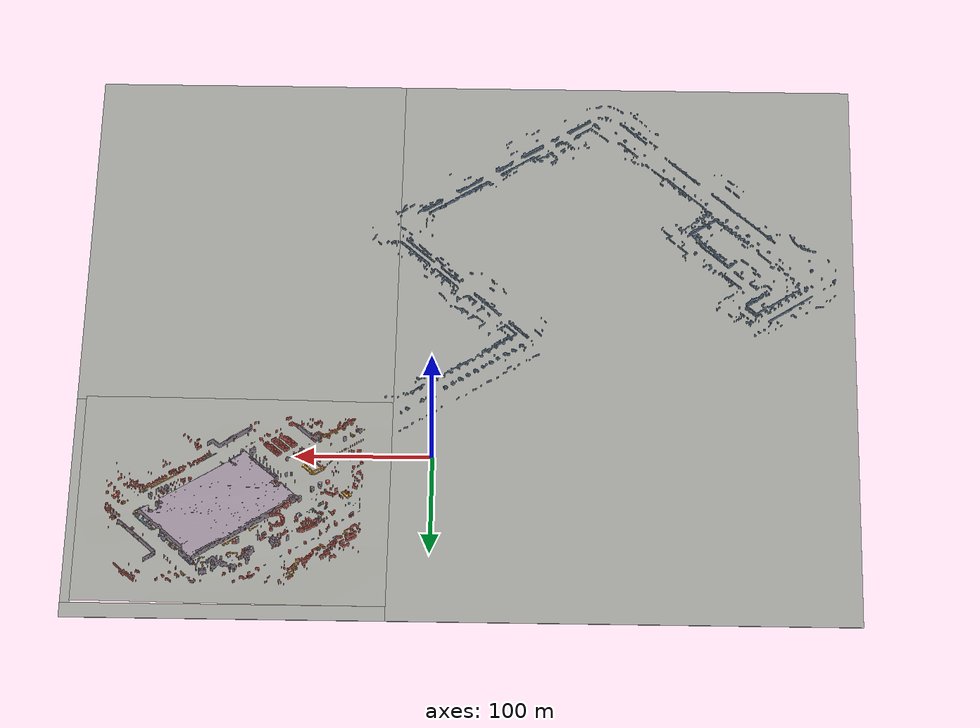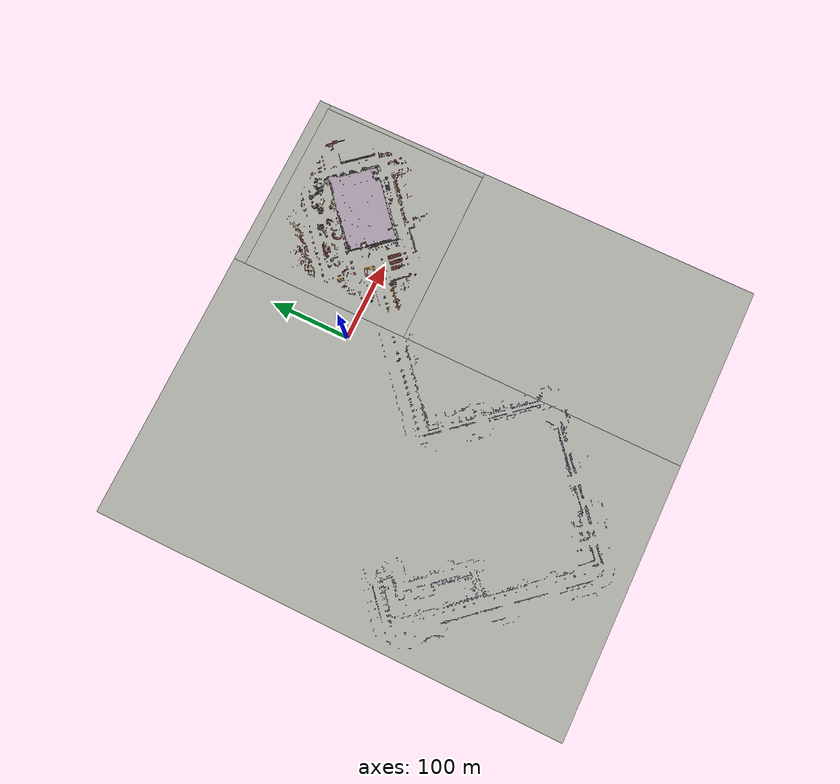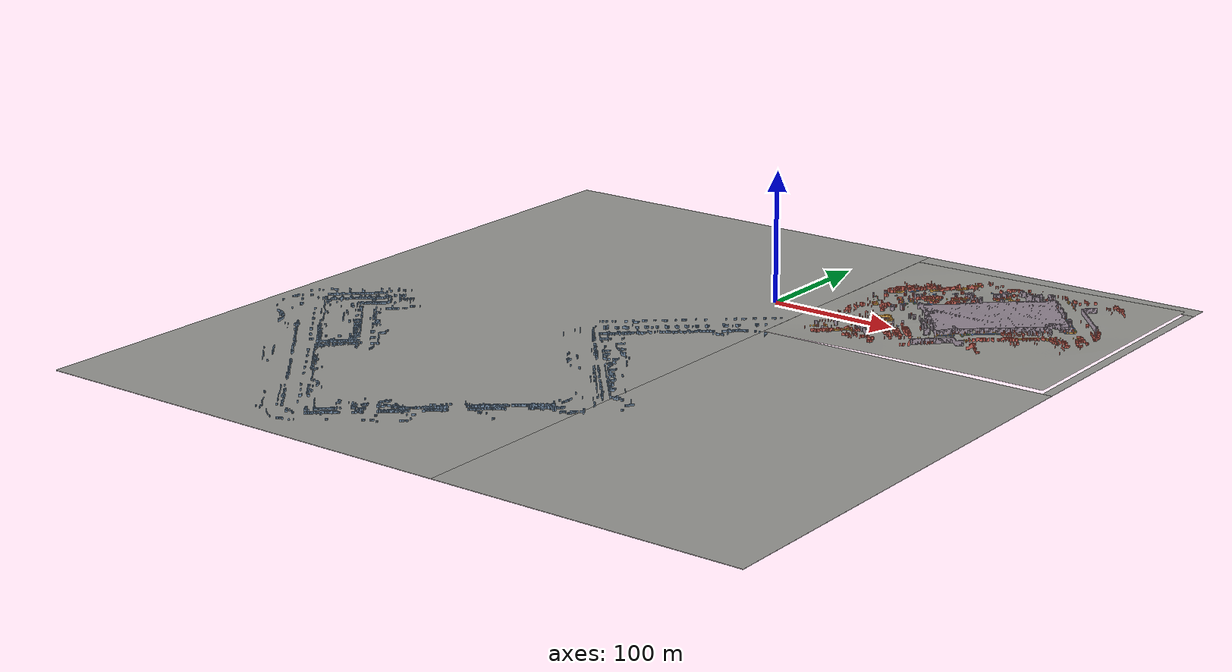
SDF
<sdf version="1.9">
 <world name="tsukuba">
  <physics name="4ms" type="ignored">
   <max_step_size>0.004</max_step_size>
   <real_time_factor>1.0</real_time_factor>
   <gravity>0 0 -9.8</gravity>
  </physics>
  <plugin filename="libignition-gazebo-physics-system.so" name="ignition::gazebo::systems::Physics"/>
  <plugin filename="libignition-gazebo-user-commands-system.so" name="ignition::gazebo::systems::UserCommands"/>
  <plugin filename="libignition-gazebo-scene-broadcaster-system.so" name="ignition::gazebo::systems::SceneBroadcaster"/>
  <plugin filename="libignition-gazebo-sensors-system.so" name="ignition::gazebo::systems::Sensors">
   <render_engine>ogre2</render_engine>
  </plugin>
  <plugin filename="libignition-gazebo-imu-system.so" name="ignition::gazebo::systems::Imu"/>
  <plugin filename="ignition-gazebo-navsat-system" name="ignition::gazebo::systems::NavSat"/>
  <scene>
   <ambient>1 1 1 1</ambient>
   <background>0.3 0.7 0.9 1</background>
   <shadows>0</shadows>
   <grid>false</grid>
  </scene>
  <light type="directional" name="sun">
   <cast_shadows>0</cast_shadows>
   <pose>0 0 10 0 0 0</pose>
   <diffuse>0.8 0.8 0.8 1</diffuse>
   <specular>0.2 0.2 0.2 1</specular>
   <attenuation>
    <range>1000</range>
    <constant>0.9</constant>
    <linear>0.01</linear>
    <quadratic>0.001</quadratic>
   </attenuation>
   <direction>-0.5 0.1 -0.9</direction>
  </light>
  <include><uri>model://tsukuba</uri></include>
  <include><uri>model://tsukuba_walls</uri></include>
  <gravity>0 0 -9.8000000000000007</gravity>
  <magnetic_field>6.0000000000000002e-06 2.3e-05 -4.1999999999999998e-05</magnetic_field>
  <atmosphere type="adiabatic"/>
  <spherical_coordinates>
   <surface_model>EARTH_WGS84</surface_model>
   <world_frame_orientation>ENU</world_frame_orientation>
   <latitude_deg>36.082877536</latitude_deg>
   <longitude_deg>140.078040399</longitude_deg>
   <elevation>65.563</elevation>
   <heading_deg>134.7000</heading_deg>
  </spherical_coordinates>
 </world>
</sdf>

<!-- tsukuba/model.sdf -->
<sdf version="1.9">
  <model name="tsukuba">
    <static>true</static>
    <link name="link">
      <collision name="terrain_collision">
        <geometry><mesh><uri>model://tsukuba/meshes/terrain.obj</uri></mesh></geometry>
      </collision>
      <visual name="terrain_visual">
        <geometry><mesh><uri>model://tsukuba/meshes/terrain.obj</uri></mesh></geometry>
        <material>
          <ambient>0.62 0.62 0.60 1</ambient>
          <diffuse>0.62 0.62 0.60 1</diffuse>
          <specular>0.05 0.05 0.05 1</specular>
        </material>
      </visual>
      <collision name="obstacles_030cm_collision">
        <geometry><mesh><uri>model://tsukuba/meshes/obstacles_030cm.obj</uri></mesh></geometry>
      </collision>
      <visual name="obstacles_030cm_visual">
        <geometry><mesh><uri>model://tsukuba/meshes/obstacles_030cm.obj</uri></mesh></geometry>
        <material>
          <ambient>0.55 0.75 0.45 1</ambient>
          <diffuse>0.55 0.75 0.45 1</diffuse>
          <specular>0.05 0.05 0.05 1</specular>
        </material>
      </visual>
      <collision name="obstacles_060cm_collision">
        <geometry><mesh><uri>model://tsukuba/meshes/obstacles_060cm.obj</uri></mesh></geometry>
      </collision>
      <visual name="obstacles_060cm_visual">
        <geometry><mesh><uri>model://tsukuba/meshes/obstacles_060cm.obj</uri></mesh></geometry>
        <material>
          <ambient>0.45 0.60 0.85 1</ambient>
          <diffuse>0.45 0.60 0.85 1</diffuse>
          <specular>0.05 0.05 0.05 1</specular>
        </material>
      </visual>
      <collision name="obstacles_100cm_collision">
        <geometry><mesh><uri>model://tsukuba/meshes/obstacles_100cm.obj</uri></mesh></geometry>
      </collision>
      <visual name="obstacles_100cm_visual">
        <geometry><mesh><uri>model://tsukuba/meshes/obstacles_100cm.obj</uri></mesh></geometry>
        <material>
          <ambient>0.95 0.70 0.30 1</ambient>
          <diffuse>0.95 0.70 0.30 1</diffuse>
          <specular>0.05 0.05 0.05 1</specular>
        </material>
      </visual>
      <collision name="obstacles_200cm_collision">
        <geometry><mesh><uri>model://tsukuba/meshes/obstacles_200cm.obj</uri></mesh></geometry>
      </collision>
      <visual name="obstacles_200cm_visual">
        <geometry><mesh><uri>model://tsukuba/meshes/obstacles_200cm.obj</uri></mesh></geometry>
        <material>
          <ambient>0.80 0.40 0.35 1</ambient>
          <diffuse>0.80 0.40 0.35 1</diffuse>
          <specular>0.05 0.05 0.05 1</specular>
        </material>
      </visual>
      <collision name="obstacles_400cm_collision">
        <geometry><mesh><uri>model://tsukuba/meshes/obstacles_400cm.obj</uri></mesh></geometry>
      </collision>
      <visual name="obstacles_400cm_visual">
        <geometry><mesh><uri>model://tsukuba/meshes/obstacles_400cm.obj</uri></mesh></geometry>
        <material>
          <ambient>0.60 0.55 0.60 1</ambient>
          <diffuse>0.60 0.55 0.60 1</diffuse>
          <specular>0.05 0.05 0.05 1</specular>
        </material>
      </visual>
      <collision name="pillars_collision">
        <geometry><mesh><uri>model://tsukuba/meshes/pillars.obj</uri></mesh></geometry>
      </collision>
      <visual name="pillars_visual">
        <geometry><mesh><uri>model://tsukuba/meshes/pillars.obj</uri></mesh></geometry>
        <material>
          <ambient>0.70 0.68 0.62 1</ambient>
          <diffuse>0.70 0.68 0.62 1</diffuse>
          <specular>0.05 0.05 0.05 1</specular>
        </material>
      </visual>
    </link>
  </model>
</sdf>

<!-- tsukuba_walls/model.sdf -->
<sdf version="1.9">
  <model name="tsukuba_walls">
    <static>true</static>
    <link name="link">
      <collision name="walls_collision">
        <geometry><mesh><uri>model://tsukuba_walls/meshes/walls.obj</uri></mesh></geometry>
      </collision>
      <visual name="walls_visual">
        <geometry><mesh><uri>model://tsukuba_walls/meshes/walls.obj</uri></mesh></geometry>
        <material><ambient>0.45 0.55 0.65 1</ambient><diffuse>0.45 0.55 0.65 1</diffuse><specular>0.05 0.05 0.05 1</specular></material>
      </visual>
      <collision name="ground_0_collision">
        <pose>-140.000 -125.000 -0.610 0 0 0</pose>
        <geometry><box><size>340.000 590.000 0.3</size></box></geometry>
      </collision>
      <visual name="ground_0_visual">
        <pose>-140.000 -125.000 -0.610 0 0 0</pose>
        <geometry><box><size>340.000 590.000 0.3</size></box></geometry>
        <material><ambient>0.62 0.62 0.60 1</ambient><diffuse>0.62 0.62 0.60 1</diffuse><specular>0.05 0.05 0.05 1</specular></material>
      </visual>
      <collision name="ground_1_collision">
        <pose>146.000 -240.000 -0.610 0 0 0</pose>
        <geometry><box><size>232.000 360.000 0.3</size></box></geometry>
      </collision>
      <visual name="ground_1_visual">
        <pose>146.000 -240.000 -0.610 0 0 0</pose>
        <geometry><box><size>232.000 360.000 0.3</size></box></geometry>
        <material><ambient>0.62 0.62 0.60 1</ambient><diffuse>0.62 0.62 0.60 1</diffuse><specular>0.05 0.05 0.05 1</specular></material>
      </visual>
      <collision name="ground_2_collision">
        <pose>146.000 162.500 -0.610 0 0 0</pose>
        <geometry><box><size>232.000 15.000 0.3</size></box></geometry>
      </collision>
      <visual name="ground_2_visual">
        <pose>146.000 162.500 -0.610 0 0 0</pose>
        <geometry><box><size>232.000 15.000 0.3</size></box></geometry>
        <material><ambient>0.62 0.62 0.60 1</ambient><diffuse>0.62 0.62 0.60 1</diffuse><specular>0.05 0.05 0.05 1</specular></material>
      </visual>
      <collision name="ground_3_collision">
        <pose>258.500 47.500 -0.610 0 0 0</pose>
        <geometry><box><size>7.000 215.000 0.3</size></box></geometry>
      </collision>
      <visual name="ground_3_visual">
        <pose>258.500 47.500 -0.610 0 0 0</pose>
        <geometry><box><size>7.000 215.000 0.3</size></box></geometry>
        <material><ambient>0.62 0.62 0.60 1</ambient><diffuse>0.62 0.62 0.60 1</diffuse><specular>0.05 0.05 0.05 1</specular></material>
      </visual>
    </link>
  </model>
</sdf>
